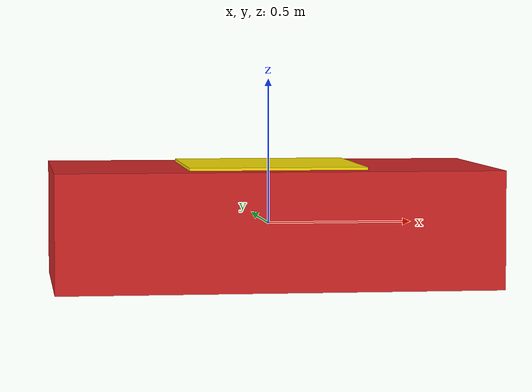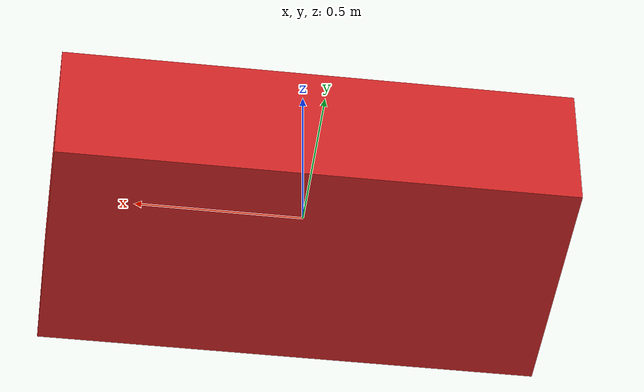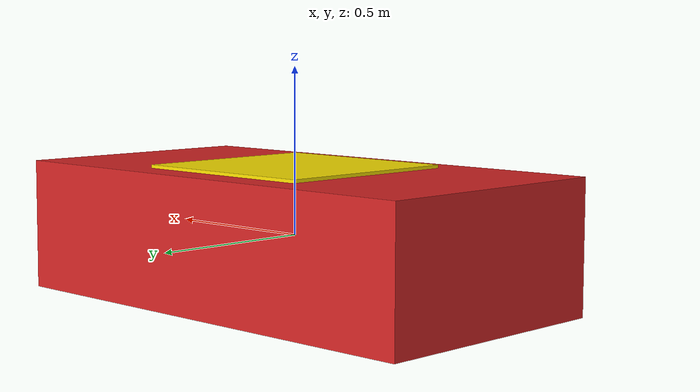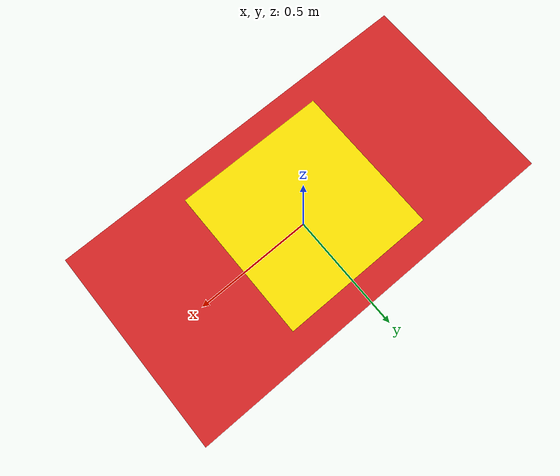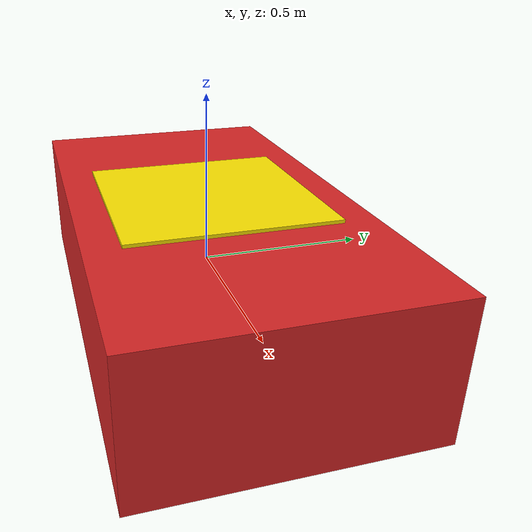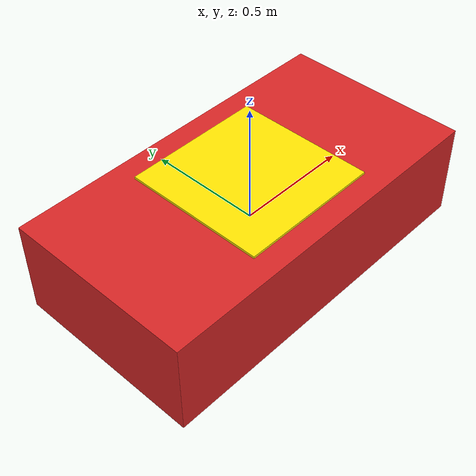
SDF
<?xml version="1.0" ?>
<sdf version="1.9">
  <model name="target_car">
    <static>false</static>

    <link name="chassis">
      <gravity>false</gravity>
      <!-- Main Car Body (Red) -->
      <visual name="chassis_visual">
        <geometry>
          <box>
            <size>1.5 0.8 0.4</size>
          </box>
        </geometry>
        <material>
          <ambient>0.85 0.15 0.15 1</ambient>
          <diffuse>0.85 0.15 0.15 1</diffuse>
        </material>
      </visual>

      <!-- High-Contrast Tracking Target on Roof (Bright Yellow Pad) -->
      <visual name="roof_marker">
        <pose>0 0 0.205 0 0 0</pose>
        <geometry>
          <box>
            <size>0.6 0.6 0.01</size>
          </box>
        </geometry>
        <material>
          <ambient>1.0 0.9 0.0 1</ambient>
          <diffuse>1.0 0.9 0.0 1</diffuse>
          <emissive>0.2 0.2 0.0 1</emissive>
        </material>
      </visual>
    </link>

    <plugin
      filename="DeterministicPathPlugin"
      name="DeterministicPathPlugin">
      <speed>0.75</speed>
      <waypoints>
        <waypoint>2 3</waypoint>
        <waypoint>2 8</waypoint>
        <waypoint>-4 8</waypoint>
        <waypoint>-4 3</waypoint>
      </waypoints>
    </plugin>

    <plugin
      filename="gz-sim-pose-publisher-system"
      name="gz::sim::systems::PosePublisher">
      <topic>/world/iris_runway/model/target_car/pose</topic>
      <publish_model_pose>true</publish_model_pose>
      <publish_link_pose>false</publish_link_pose>
      <use_pose_vector_msg>true</use_pose_vector_msg>
      <update_frequency>10</update_frequency>
    </plugin>

  </model>
</sdf>
